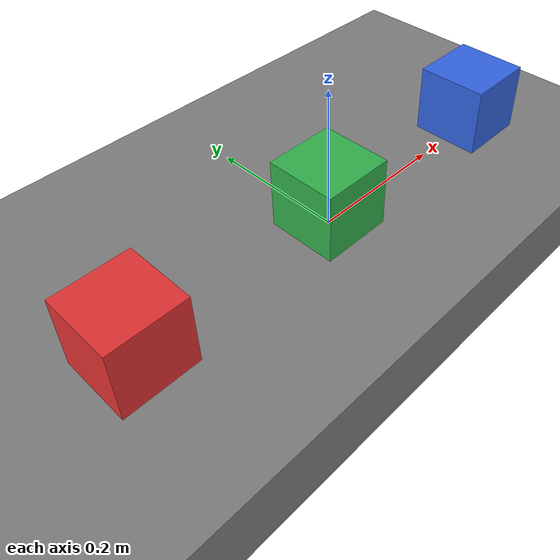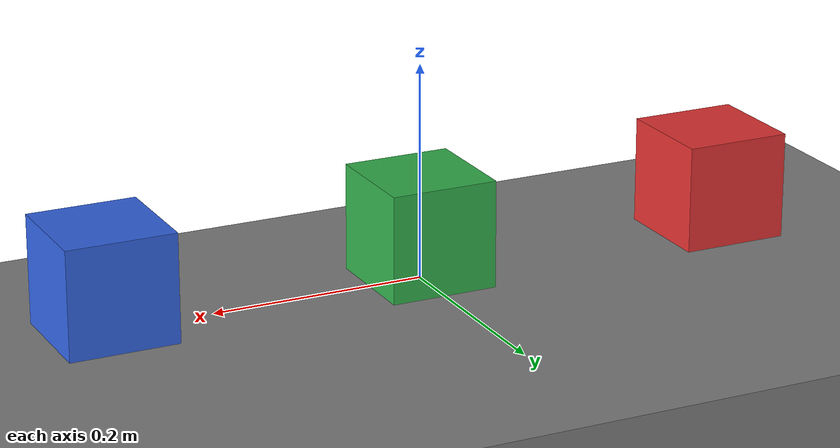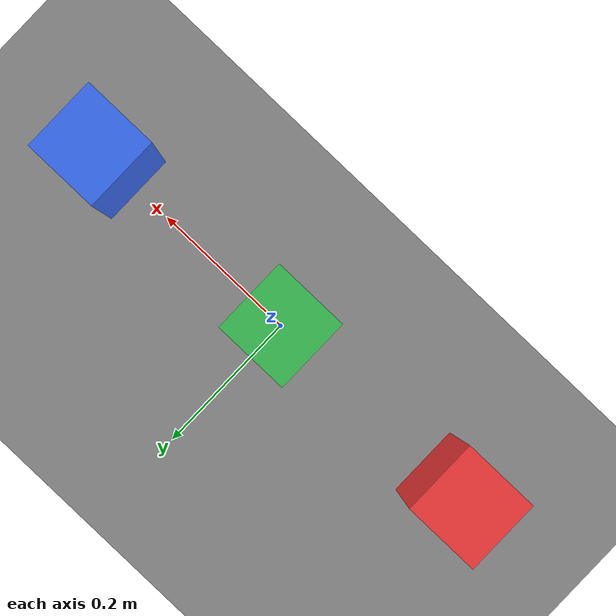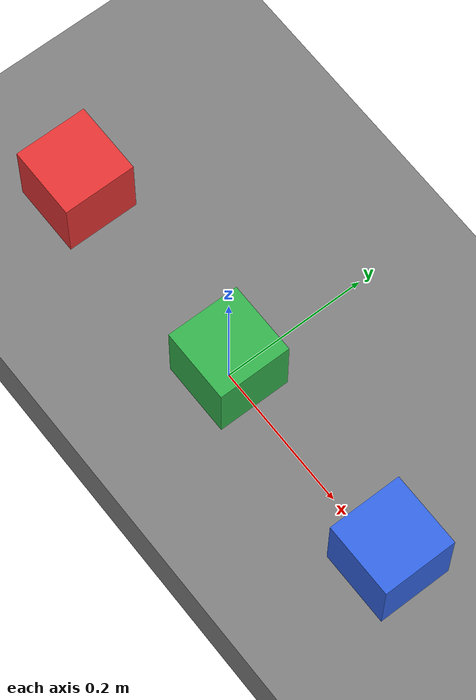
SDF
<?xml version="1.0"?>
<!-- A row of free compliant-hydroelastic boxes resting on a rigid-hydroelastic
     ground. Used to test mouse spring interactions. -->
<sdf version="1.9" xmlns:drake="http://drake.mit.edu">
  <model name="mouse_spring_demo">

    <!-- Ground: a rigid hydroelastic slab whose top face lies at z = 0. -->
    <link name="ground">
      <pose>0 0 -0.05 0 0 0</pose>
      <visual name="ground">
        <geometry>
          <box>
            <size>3 3 0.1</size>
          </box>
        </geometry>
        <material>
          <diffuse>0.5 0.5 0.5 1</diffuse>
        </material>
      </visual>
      <collision name="ground">
        <geometry>
          <box>
            <size>3 3 0.1</size>
          </box>
        </geometry>
        <drake:proximity_properties>
          <drake:rigid_hydroelastic/>
          <drake:mesh_resolution_hint>3.0</drake:mesh_resolution_hint>
          <drake:mu_static>0.5</drake:mu_static>
          <drake:mu_dynamic>0.5</drake:mu_dynamic>
        </drake:proximity_properties>
      </collision>
    </link>
    <joint name="ground_weld" type="fixed">
      <parent>world</parent>
      <child>ground</child>
    </joint>

    <!-- A row of free compliant hydroelastic boxes resting on the ground. The
         0.1 m boxes have a mass of 1 kg each. -->
    <link name="box_0">
      <pose>-0.3 0 0.05 0 0 0</pose>
      <inertial>
        <mass>1.0</mass>
        <inertia>
          <ixx>0.0016666666666666668</ixx>
          <ixy>0</ixy>
          <ixz>0</ixz>
          <iyy>0.0016666666666666668</iyy>
          <iyz>0</iyz>
          <izz>0.0016666666666666668</izz>
        </inertia>
      </inertial>
      <visual name="box_0_visual">
        <geometry>
          <box>
            <size>0.1 0.1 0.1</size>
          </box>
        </geometry>
        <material>
          <diffuse>0.9 0.2 0.2 1</diffuse>
        </material>
      </visual>
      <collision name="box_0_collision">
        <geometry>
          <box>
            <size>0.1 0.1 0.1</size>
          </box>
        </geometry>
        <drake:proximity_properties>
          <drake:compliant_hydroelastic/>
          <drake:mesh_resolution_hint>0.05</drake:mesh_resolution_hint>
          <drake:hydroelastic_modulus>1.0e8</drake:hydroelastic_modulus>
          <drake:mu_static>0.5</drake:mu_static>
          <drake:mu_dynamic>0.5</drake:mu_dynamic>
        </drake:proximity_properties>
      </collision>
    </link>

    <link name="box_1">
      <pose>0 0 0.05 0 0 0</pose>
      <inertial>
        <mass>1.0</mass>
        <inertia>
          <ixx>0.0016666666666666668</ixx>
          <ixy>0</ixy>
          <ixz>0</ixz>
          <iyy>0.0016666666666666668</iyy>
          <iyz>0</iyz>
          <izz>0.0016666666666666668</izz>
        </inertia>
      </inertial>
      <visual name="box_1_visual">
        <geometry>
          <box>
            <size>0.1 0.1 0.1</size>
          </box>
        </geometry>
        <material>
          <diffuse>0.2 0.7 0.3 1</diffuse>
        </material>
      </visual>
      <collision name="box_1_collision">
        <geometry>
          <box>
            <size>0.1 0.1 0.1</size>
          </box>
        </geometry>
        <drake:proximity_properties>
          <drake:compliant_hydroelastic/>
          <drake:mesh_resolution_hint>0.05</drake:mesh_resolution_hint>
          <drake:hydroelastic_modulus>1.0e8</drake:hydroelastic_modulus>
          <drake:mu_static>0.5</drake:mu_static>
          <drake:mu_dynamic>0.5</drake:mu_dynamic>
        </drake:proximity_properties>
      </collision>
    </link>

    <link name="box_2">
      <pose>0.3 0 0.05 0 0 0</pose>
      <inertial>
        <mass>1.0</mass>
        <inertia>
          <ixx>0.0016666666666666668</ixx>
          <ixy>0</ixy>
          <ixz>0</ixz>
          <iyy>0.0016666666666666668</iyy>
          <iyz>0</iyz>
          <izz>0.0016666666666666668</izz>
        </inertia>
      </inertial>
      <visual name="box_2_visual">
        <geometry>
          <box>
            <size>0.1 0.1 0.1</size>
          </box>
        </geometry>
        <material>
          <diffuse>0.2 0.4 0.9 1</diffuse>
        </material>
      </visual>
      <collision name="box_2_collision">
        <geometry>
          <box>
            <size>0.1 0.1 0.1</size>
          </box>
        </geometry>
        <drake:proximity_properties>
          <drake:compliant_hydroelastic/>
          <drake:mesh_resolution_hint>0.05</drake:mesh_resolution_hint>
          <drake:hydroelastic_modulus>1.0e8</drake:hydroelastic_modulus>
          <drake:mu_static>0.5</drake:mu_static>
          <drake:mu_dynamic>0.5</drake:mu_dynamic>
        </drake:proximity_properties>
      </collision>
    </link>

  </model>
</sdf>
